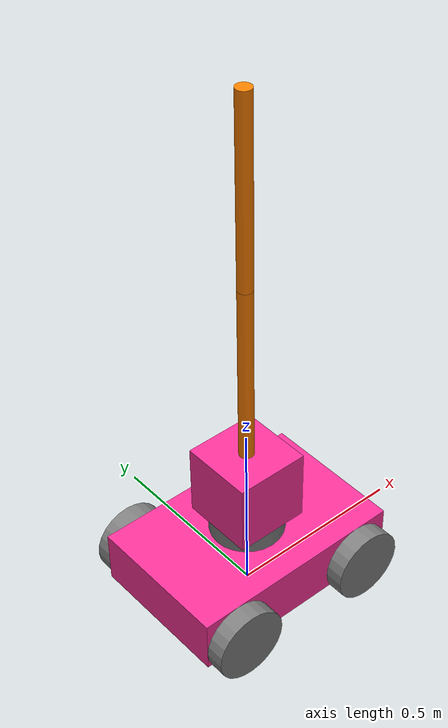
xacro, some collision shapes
<?xml version="1.0"?>
<robot name="two_wheel_car" xmlns:xacro="http://www.ros.org/wiki/xacro">
    <xacro:arg name="use_gazebo" default="false" />
    <xacro:arg name="controller_config" default="" />

    <xacro:include filename="simple_car.materials.xacro" />
    <xacro:include filename="simple_car.properties.xacro" />
    <xacro:include filename="simple_car.inertias.xacro" />
    <xacro:include filename="simple_car.wheel.xacro" />
    <xacro:include filename="simple_car.arm.xacro" />
    <xacro:include filename="simple_car.ros2_control.xacro" />
    <xacro:if value="$(arg use_gazebo)">
        <xacro:include filename="simple_car.gazebo.xacro" />
    </xacro:if>

    <!-- ====================== Links ====================== -->

    <!-- Chassis visual uses an Apache-2.0 TurtleBot3 Waffle base mesh. -->
    <link name="base_link">
        <visual>
            <geometry>
                <mesh filename="package://robot_description/meshes/visual/waffle_base.stl"
                    scale="${base_mesh_scale_x} ${base_mesh_scale_y} ${base_mesh_scale_z}" />
            </geometry>
            <origin xyz="0 0 ${base_mesh_z_offset}" rpy="0 0 0" />
            <material name="blue" />
        </visual>
        <collision>
            <geometry>
                <box size="${base_length} ${base_width} ${base_height}" />
            </geometry>
            <origin xyz="0 0 ${base_mesh_z_offset + base_height / 2}" rpy="0 0 0" />
        </collision>
        <xacro:inertial_box mass="${base_mass}" x="${base_length}" y="${base_width}"
            z="${base_height}">
            <origin xyz="0 0 ${base_mesh_z_offset + base_height / 2}" rpy="0 0 0" />
        </xacro:inertial_box>
    </link>

    <!-- Drive wheels - cylinders are rotated so their axles align with the Y-axis. -->
    <xacro:wheel name="front_left" x="${wheel_x_offset}"
        y="${base_width / 2 + wheel_width / 2}" />
    <xacro:wheel name="front_right" x="${wheel_x_offset}"
        y="${-(base_width / 2 + wheel_width / 2)}" />
    <xacro:wheel name="rear_left" x="${-wheel_x_offset}"
        y="${base_width / 2 + wheel_width / 2}" />
    <xacro:wheel name="rear_right" x="${-wheel_x_offset}"
        y="${-(base_width / 2 + wheel_width / 2)}" />

    <!-- Upper rotating platform and its mounted box. -->
    <link name="top_wheel_link">
        <visual>
            <geometry>
                <cylinder radius="${top_wheel_radius}" length="${top_wheel_height}" />
            </geometry>
            <!-- Raise the cylinder by half its length above the joint frame. -->
            <origin xyz="0 0 ${top_wheel_height / 2}" rpy="0 0 0" />
            <material name="gray" />
        </visual>
        <collision>
            <geometry>
                <cylinder radius="${top_wheel_radius}" length="${top_wheel_height}" />
            </geometry>
            <origin xyz="0 0 ${top_wheel_height / 2}" rpy="0 0 0" />
        </collision>
        <xacro:inertial_cylinder mass="${top_wheel_mass}" radius="${top_wheel_radius}"
            length="${top_wheel_height}">
            <origin xyz="0 0 ${top_wheel_height / 2}" rpy="0 0 0" />
        </xacro:inertial_cylinder>
    </link>

    <link name="box_on_top_wheel_link">
        <visual>
            <geometry>
                <box size="${top_box_length} ${top_box_width} ${top_box_height}" />
            </geometry>
            <!-- Raise the box by half its height above its link frame. -->
            <origin xyz="0 0 ${top_box_height / 2}" rpy="0 0 0" />
            <material name="blue" />
        </visual>
        <collision>
            <geometry>
                <box size="${top_box_length} ${top_box_width} ${top_box_height}" />
            </geometry>
            <origin xyz="0 0 ${top_box_height / 2}" rpy="0 0 0" />
        </collision>
        <xacro:inertial_box mass="${top_box_mass}" x="${top_box_length}" y="${top_box_width}"
            z="${top_box_height}">
            <origin xyz="0 0 ${top_box_height / 2}" rpy="0 0 0" />
        </xacro:inertial_box>
    </link>

    <!-- Camera sensor mounted on the front of the top box -->
    <link name="camera_link">
        <visual>
            <geometry>
                <cylinder radius="${camera_radius}" length="${camera_length}" />
            </geometry>
            <!-- Align cylinder along X (forward) and extend outward from mounting surface -->
            <origin xyz="${camera_length / 2} 0 0" rpy="0 ${pi / 2} 0" />
            <material name="black" />
        </visual>
        <collision>
            <geometry>
                <cylinder radius="${camera_radius}" length="${camera_length}" />
            </geometry>
            <origin xyz="${camera_length / 2} 0 0" rpy="0 ${pi / 2} 0" />
        </collision>
        <xacro:inertial_cylinder mass="${camera_mass}" radius="${camera_radius}"
            length="${camera_length}">
            <origin xyz="${camera_length / 2} 0 0" rpy="0 ${pi / 2} 0" />
        </xacro:inertial_cylinder>
    </link>

    <!-- Camera optical frame (REP-103 convention - +Z forward, +X right, +Y down) -->
    <link name="camera_optical_frame" />

    <!-- ===================== Joints ====================== -->

    <!-- Upper assembly - rotate the platform around Z and rigidly attach its box. -->
    <joint name="wheel_joint" type="revolute">
        <parent link="base_link" />
        <child link="top_wheel_link" />
        <!-- Place the platform joint on the top surface of the chassis. -->
        <origin xyz="0 0 ${base_mesh_z_offset + base_height}" rpy="0 0 0" />
        <axis xyz="0 0 1" />
        <limit effort="100" velocity="10" lower="${pi / -2}" upper="${pi / 2}" />
    </joint>

    <joint name="box_on_wheel_joint" type="fixed">
        <parent link="top_wheel_link" />
        <child link="box_on_top_wheel_link" />
        <!-- Place the box on the top surface of the rotating platform. -->
        <origin xyz="0 0 ${top_wheel_height}" rpy="0 0 0" />
    </joint>

    <joint name="camera_joint" type="fixed">
        <parent link="box_on_top_wheel_link" />
        <child link="camera_link" />
        <!-- Place the camera joint at the front face center of the top box. -->
        <origin xyz="${top_box_length / 2} 0 ${top_box_height / 2}" rpy="0 0 0" />
    </joint>

    <joint name="camera_optical_joint" type="fixed">
        <parent link="camera_link" />
        <child link="camera_optical_frame" />
        <!-- Optical frame transform - +Z forward along camera lens, +X right, +Y down -->
        <origin xyz="${camera_length} 0 0" rpy="${-pi / 2} 0 ${-pi / 2}" />
    </joint>

    <!-- 2-part robotic arm mounted above the top box -->
    <xacro:arm parent="box_on_top_wheel_link" />
</robot>

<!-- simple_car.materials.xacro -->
<robot xmlns:xacro="http://www.ros.org/wiki/xacro">
    <material name="blue">
        <color rgba="1 0.2 0.6 1" />
    </material>

    <material name="gray">
        <color rgba="0.5 0.5 0.5 1" />
    </material>

    <material name="black">
        <color rgba="0.1 0.1 0.1 1" />
    </material>

    <material name="orange">
        <color rgba="1.0 0.5 0.0 1.0" />
    </material>
</robot>

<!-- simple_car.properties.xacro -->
<robot xmlns:xacro="http://www.ros.org/wiki/xacro">
    <xacro:property name="base_length" value="0.6" />
    <xacro:property name="base_width" value="0.4" />
    <xacro:property name="base_height" value="0.15" />
    <xacro:property name="base_mass" value="5.0" />
    <xacro:property name="base_mesh_scale_x" value="0.002" />
    <xacro:property name="base_mesh_scale_y" value="0.00143" />
    <xacro:property name="base_mesh_scale_z" value="0.00125" />
    <xacro:property name="base_mesh_z_offset" value="0.05" />

    <xacro:property name="wheel_radius" value="0.1" />
    <xacro:property name="wheel_width" value="0.05" />
    <xacro:property name="wheel_x_offset" value="0.2" />
    <xacro:property name="wheel_mass" value="0.5" />

    <xacro:property name="top_wheel_radius" value="0.1" />
    <xacro:property name="top_wheel_height" value="0.05" />
    <xacro:property name="top_wheel_mass" value="0.5" />
    <xacro:property name="top_box_length" value="0.2" />
    <xacro:property name="top_box_width" value="0.2" />
    <xacro:property name="top_box_height" value="0.2" />
    <xacro:property name="top_box_mass" value="0.5" />

    <xacro:property name="camera_radius" value="0.02" />
    <xacro:property name="camera_length" value="0.04" />
    <xacro:property name="camera_mass" value="0.05" />

    <xacro:property name="arm_length" value="0.5" />
    <xacro:property name="arm_radius" value="0.02" />
    <xacro:property name="arm_mass" value="0.2" />
</robot>

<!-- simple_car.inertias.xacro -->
<robot xmlns:xacro="http://www.ros.org/wiki/xacro">
    <!-- Reference -
    https://en.wikipedia.org/wiki/List_of_moments_of_inertia#List_of_3D_inertia_tensors -->
    <!-- Macro for box inertia -->
    <xacro:macro name="inertial_box" params="mass x y z *origin">
        <inertial>
            <xacro:insert_block name="origin" />
            <mass value="${mass}" />
            <inertia ixx="${(1/12) * mass * (y*y + z*z)}" ixy="0.0" ixz="0.0"
                iyy="${(1/12) * mass * (x*x + z*z)}" iyz="0.0"
                izz="${(1/12) * mass * (x*x + y*y)}" />
        </inertial>
    </xacro:macro>

    <!-- Macro for cylinder inertia along its axis of revolution (Z in its local frame) -->
    <xacro:macro name="inertial_cylinder" params="mass radius length *origin">
        <inertial>
            <xacro:insert_block name="origin" />
            <mass value="${mass}" />
            <inertia ixx="${(1/12) * mass * (3*radius*radius + length*length)}" ixy="0.0" ixz="0.0"
                iyy="${(1/12) * mass * (3*radius*radius + length*length)}" iyz="0.0"
                izz="${(1/2) * mass * (radius*radius)}" />
        </inertial>
    </xacro:macro>

    <!-- Macro for sphere inertia -->
    <xacro:macro name="inertial_sphere" params="mass radius *origin">
        <inertial>
            <xacro:insert_block name="origin" />
            <mass value="${mass}" />
            <inertia ixx="${(2/5) * mass * (radius*radius)}" ixy="0.0" ixz="0.0"
                iyy="${(2/5) * mass * (radius*radius)}" iyz="0.0"
                izz="${(2/5) * mass * (radius*radius)}" />
        </inertial>
    </xacro:macro>
</robot>

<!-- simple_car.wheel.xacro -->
<robot xmlns:xacro="http://www.ros.org/wiki/xacro">
    <xacro:macro name="wheel" params="name x y">
        <link name="${name}_wheel_link">
            <visual>
                <geometry>
                    <cylinder radius="${wheel_radius}" length="${wheel_width}" />
                </geometry>
                <origin xyz="0 0 0" rpy="${pi / 2} 0 0" />
                <material name="gray" />
            </visual>
            <collision>
                <geometry>
                    <cylinder radius="${wheel_radius}" length="${wheel_width}" />
                </geometry>
                <origin xyz="0 0 0" rpy="${pi / 2} 0 0" />
            </collision>
            <xacro:inertial_cylinder mass="${wheel_mass}" radius="${wheel_radius}"
                length="${wheel_width}">
                <origin xyz="0 0 0" rpy="${pi / 2} 0 0" />
            </xacro:inertial_cylinder>
        </link>

        <!-- friction -->
        <gazebo reference="${name}_wheel_link">
            <mu1>1.0</mu1>
            <mu2>0.5</mu2>
            <kp>1000000.0</kp>
            <kd>100.0</kd>
            <minDepth>0.001</minDepth>
            <maxVel>1.0</maxVel>
        </gazebo>

        <joint name="${name}_wheel_joint" type="continuous">
            <parent link="base_link" />
            <child link="${name}_wheel_link" />
            <origin xyz="${x} ${y} ${wheel_radius}" rpy="0 0 0" />
            <axis xyz="0 1 0" />
            <limit effort="100" velocity="10" />
            <dynamics damping="0.1" friction="0.1" />
        </joint>
    </xacro:macro>
</robot>

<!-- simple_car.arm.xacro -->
<robot xmlns:xacro="http://www.ros.org/wiki/xacro">
    <xacro:macro name="arm" params="parent:=box_on_top_wheel_link">
        <!-- ================= Arm Part 1 (Lower Arm) ================= -->
        <link name="arm_link_1">
            <visual>
                <geometry>
                    <cylinder radius="${arm_radius}" length="${arm_length}" />
                </geometry>
                <!-- Raise the cylinder so its base sits at the joint origin -->
                <origin xyz="0 0 ${arm_length / 2}" rpy="0 0 0" />
                <material name="orange" />
            </visual>
            <collision>
                <geometry>
                    <cylinder radius="${arm_radius}" length="${arm_length}" />
                </geometry>
                <origin xyz="0 0 ${arm_length / 2}" rpy="0 0 0" />
            </collision>
            <xacro:inertial_cylinder mass="${arm_mass}" radius="${arm_radius}"
                length="${arm_length}">
                <origin xyz="0 0 ${arm_length / 2}" rpy="0 0 0" />
            </xacro:inertial_cylinder>
        </link>

        <!-- Gazebo settings for Arm Part 1 -->
        <gazebo reference="arm_link_1">
            <visual>
                <material>
                    <ambient>1.0 0.5 0.0 1.0</ambient>
                    <diffuse>1.0 0.5 0.0 1.0</diffuse>
                    <specular>0.5 0.5 0.5 1.0</specular>
                </material>
            </visual>
            <mu1>0.2</mu1>
            <mu2>0.2</mu2>
        </gazebo>

        <!-- Joint 1 - Mounted above top box, bends up to 90 degrees (+/- pi/2) around Y-axis -->
        <joint name="arm_joint_1" type="revolute">
            <parent link="${parent}" />
            <child link="arm_link_1" />
            <!-- Position on top surface of top box -->
            <origin xyz="0 0 ${top_box_height}" rpy="0 0 0" />
            <axis xyz="0 1 0" />
            <limit effort="100" velocity="10" lower="${-pi / 2}" upper="${pi / 2}" />
            <dynamics damping="0.1" friction="0.1" />
        </joint>

        <gazebo reference="arm_joint_1">
            <implicitSpringDamper>true</implicitSpringDamper>
        </gazebo>

        <!-- ================= Arm Part 2 (Upper Arm) ================= -->
        <link name="arm_link_2">
            <visual>
                <geometry>
                    <cylinder radius="${arm_radius}" length="${arm_length}" />
                </geometry>
                <!-- Raise the cylinder so its base sits at the joint origin -->
                <origin xyz="0 0 ${arm_length / 2}" rpy="0 0 0" />
                <material name="orange" />
            </visual>
            <collision>
                <geometry>
                    <cylinder radius="${arm_radius}" length="${arm_length}" />
                </geometry>
                <origin xyz="0 0 ${arm_length / 2}" rpy="0 0 0" />
            </collision>
            <xacro:inertial_cylinder mass="${arm_mass}" radius="${arm_radius}"
                length="${arm_length}">
                <origin xyz="0 0 ${arm_length / 2}" rpy="0 0 0" />
            </xacro:inertial_cylinder>
        </link>

        <!-- Gazebo settings for Arm Part 2 -->
        <gazebo reference="arm_link_2">
            <visual>
                <material>
                    <ambient>1.0 0.5 0.0 1.0</ambient>
                    <diffuse>1.0 0.5 0.0 1.0</diffuse>
                    <specular>0.5 0.5 0.5 1.0</specular>
                </material>
            </visual>
            <mu1>0.2</mu1>
            <mu2>0.2</mu2>
        </gazebo>

        <!-- Joint 2: Connects Arm Link 1 to Arm Link 2, bends up to 90 degrees (+/- pi/2) around
        Y-axis -->
        <joint name="arm_joint_2" type="revolute">
            <parent link="arm_link_1" />
            <child link="arm_link_2" />
            <!-- Position at tip of Arm Link 1 -->
            <origin xyz="0 0 ${arm_length}" rpy="0 0 0" />
            <axis xyz="0 1 0" />
            <limit effort="100" velocity="10" lower="${-pi / 2}" upper="${pi / 2}" />
            <dynamics damping="0.1" friction="0.1" />
        </joint>

        <gazebo reference="arm_joint_2">
            <!-- Ensure stable, smooth, and realistic simulation for the joint -->
            <implicitSpringDamper>true</implicitSpringDamper>
        </gazebo>
    </xacro:macro>
</robot>
